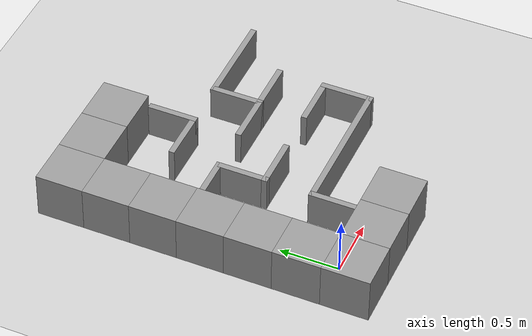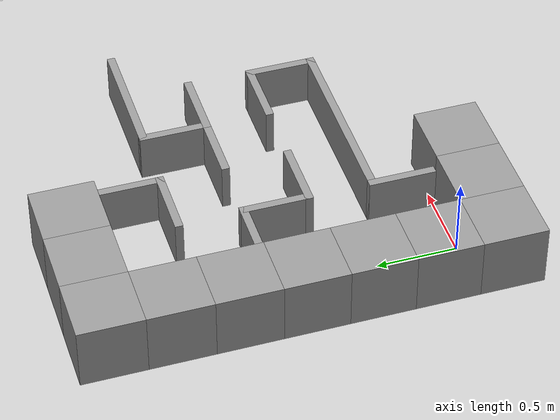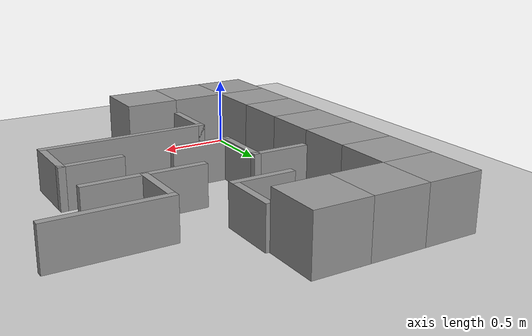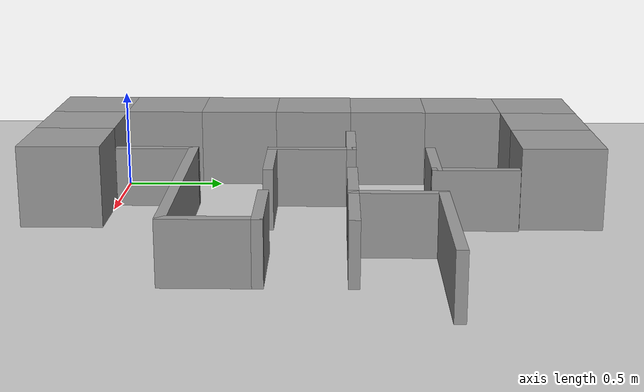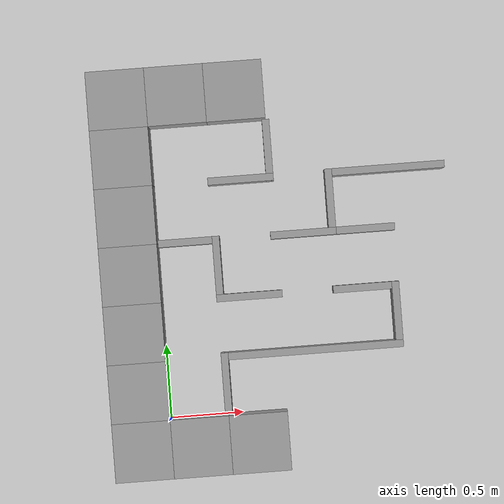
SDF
<sdf version="1.7">
 <world name="default">
  <model name="ground_plane">
   <static>1</static>
   <link name="link">
    <collision name="collision">
     <geometry><plane><normal>0 0 1</normal><size>100 100</size></plane></geometry>
     <surface><friction><ode><mu>100</mu><mu2>50</mu2></ode></friction></surface>
    </collision>
    <visual name="visual">
     <cast_shadows>0</cast_shadows>
     <geometry><plane><normal>0 0 1</normal><size>100 100</size></plane></geometry>
     <material>
      <script><uri>file://media/materials/scripts/gazebo.material</uri><name>Gazebo/Grey</name></script>
     </material>
    </visual>
   </link>
  </model>
  <model name="simplebox_clone_0">
   <link name="link_0_clone">
    <inertial>
     <mass>1</mass>
     <inertia>
      <ixx>0.166667</ixx>
      <ixy>0</ixy>
      <ixz>0</ixz>
      <iyy>0.166667</iyy>
      <iyz>0</iyz>
      <izz>0.166667</izz>
     </inertia>
    </inertial>
    <pose>0 0 0.2 0 -0 0</pose>
    <visual name="visual">
     <geometry><box><size>0.4 0.4 0.4</size></box></geometry>
     <material>
      <lighting>1</lighting>
      <script><uri>file://media/materials/scripts/gazebo.material</uri><name>Gazebo/Grey</name></script>
      <shader type="pixel"><normal_map>__default__</normal_map></shader>
      <ambient>0.3 0.3 0.3 1</ambient>
      <diffuse>0.7 0.7 0.7 1</diffuse>
      <specular>0.01 0.01 0.01 1</specular>
      <emissive>0 0 0 1</emissive>
     </material>
    </visual>
    <collision name="collision">
     <geometry><box><size>0.4 0.4 0.4</size></box></geometry>
     <surface>
      <friction>
       <ode><mu>1</mu><mu2>1</mu2><fdir1>0 0 0</fdir1><slip1>0</slip1><slip2>0</slip2></ode>
       <torsional>
        <coefficient>1</coefficient>
        <patch_radius>0</patch_radius>
        <surface_radius>0</surface_radius>
        <use_patch_radius>1</use_patch_radius>
        <ode><slip>0</slip></ode>
       </torsional>
      </friction>
      <bounce><restitution_coefficient>0</restitution_coefficient><threshold>1e+06</threshold></bounce>
      <contact>
       <collide_without_contact>0</collide_without_contact>
       <collide_without_contact_bitmask>1</collide_without_contact_bitmask>
       <collide_bitmask>1</collide_bitmask>
       <ode>
        <soft_cfm>0</soft_cfm>
        <soft_erp>0.2</soft_erp>
        <kp>1e+13</kp>
        <kd>1</kd>
        <max_vel>0.01</max_vel>
        <min_depth>0</min_depth>
       </ode>
       <bullet>
        <split_impulse>1</split_impulse>
        <split_impulse_penetration_threshold>-0.01</split_impulse_penetration_threshold>
        <soft_cfm>0</soft_cfm>
        <soft_erp>0.2</soft_erp>
        <kp>1e+13</kp>
        <kd>1</kd>
       </bullet>
      </contact>
     </surface>
    </collision>
   </link>
   <static>0</static>
   <pose>-0.200009 -0.20001 -0 0 -0 0</pose>
  </model>
  <model name="simplebox_clone_1">
   <link name="link_0_clone">
    <inertial>
     <mass>1</mass>
     <inertia>
      <ixx>0.166667</ixx>
      <ixy>0</ixy>
      <ixz>0</ixz>
      <iyy>0.166667</iyy>
      <iyz>0</iyz>
      <izz>0.166667</izz>
     </inertia>
    </inertial>
    <pose>0 0 0.2 0 -0 0</pose>
    <visual name="visual">
     <geometry><box><size>0.4 0.4 0.4</size></box></geometry>
     <material>
      <lighting>1</lighting>
      <script><uri>file://media/materials/scripts/gazebo.material</uri><name>Gazebo/Grey</name></script>
      <shader type="pixel"><normal_map>__default__</normal_map></shader>
      <ambient>0.3 0.3 0.3 1</ambient>
      <diffuse>0.7 0.7 0.7 1</diffuse>
      <specular>0.01 0.01 0.01 1</specular>
      <emissive>0 0 0 1</emissive>
     </material>
    </visual>
    <collision name="collision">
     <geometry><box><size>0.4 0.4 0.4</size></box></geometry>
     <surface>
      <friction>
       <ode><mu>1</mu><mu2>1</mu2><fdir1>0 0 0</fdir1><slip1>0</slip1><slip2>0</slip2></ode>
       <torsional>
        <coefficient>1</coefficient>
        <patch_radius>0</patch_radius>
        <surface_radius>0</surface_radius>
        <use_patch_radius>1</use_patch_radius>
        <ode><slip>0</slip></ode>
       </torsional>
      </friction>
      <bounce><restitution_coefficient>0</restitution_coefficient><threshold>1e+06</threshold></bounce>
      <contact>
       <collide_without_contact>0</collide_without_contact>
       <collide_without_contact_bitmask>1</collide_without_contact_bitmask>
       <collide_bitmask>1</collide_bitmask>
       <ode>
        <soft_cfm>0</soft_cfm>
        <soft_erp>0.2</soft_erp>
        <kp>1e+13</kp>
        <kd>1</kd>
        <max_vel>0.01</max_vel>
        <min_depth>0</min_depth>
       </ode>
       <bullet>
        <split_impulse>1</split_impulse>
        <split_impulse_penetration_threshold>-0.01</split_impulse_penetration_threshold>
        <soft_cfm>0</soft_cfm>
        <soft_erp>0.2</soft_erp>
        <kp>1e+13</kp>
        <kd>1</kd>
       </bullet>
      </contact>
     </surface>
    </collision>
   </link>
   <static>0</static>
   <pose>-0.200012 0.199992 -0 0 0 -2e-06</pose>
  </model>
  <model name="simplebox_clone_7">
   <link name="link_0_clone">
    <inertial>
     <mass>1</mass>
     <inertia>
      <ixx>0.166667</ixx>
      <ixy>0</ixy>
      <ixz>0</ixz>
      <iyy>0.166667</iyy>
      <iyz>0</iyz>
      <izz>0.166667</izz>
     </inertia>
    </inertial>
    <pose>0 0 0.2 0 -0 0</pose>
    <visual name="visual">
     <geometry><box><size>0.4 0.4 0.4</size></box></geometry>
     <material>
      <lighting>1</lighting>
      <script><uri>file://media/materials/scripts/gazebo.material</uri><name>Gazebo/Grey</name></script>
      <shader type="pixel"><normal_map>__default__</normal_map></shader>
      <ambient>0.3 0.3 0.3 1</ambient>
      <diffuse>0.7 0.7 0.7 1</diffuse>
      <specular>0.01 0.01 0.01 1</specular>
      <emissive>0 0 0 1</emissive>
     </material>
    </visual>
    <collision name="collision">
     <geometry><box><size>0.4 0.4 0.4</size></box></geometry>
     <surface>
      <friction>
       <ode><mu>1</mu><mu2>1</mu2><fdir1>0 0 0</fdir1><slip1>0</slip1><slip2>0</slip2></ode>
       <torsional>
        <coefficient>1</coefficient>
        <patch_radius>0</patch_radius>
        <surface_radius>0</surface_radius>
        <use_patch_radius>1</use_patch_radius>
        <ode><slip>0</slip></ode>
       </torsional>
      </friction>
      <bounce><restitution_coefficient>0</restitution_coefficient><threshold>1e+06</threshold></bounce>
      <contact>
       <collide_without_contact>0</collide_without_contact>
       <collide_without_contact_bitmask>1</collide_without_contact_bitmask>
       <collide_bitmask>1</collide_bitmask>
       <ode>
        <soft_cfm>0</soft_cfm>
        <soft_erp>0.2</soft_erp>
        <kp>1e+13</kp>
        <kd>1</kd>
        <max_vel>0.01</max_vel>
        <min_depth>0</min_depth>
       </ode>
       <bullet>
        <split_impulse>1</split_impulse>
        <split_impulse_penetration_threshold>-0.01</split_impulse_penetration_threshold>
        <soft_cfm>0</soft_cfm>
        <soft_erp>0.2</soft_erp>
        <kp>1e+13</kp>
        <kd>1</kd>
       </bullet>
      </contact>
     </surface>
    </collision>
   </link>
   <static>0</static>
   <pose>-0.200015 0.599992 -0 0 -0 1e-06</pose>
  </model>
  <model name="simplebox_clone_8">
   <link name="link_0_clone">
    <inertial>
     <mass>1</mass>
     <inertia>
      <ixx>0.166667</ixx>
      <ixy>0</ixy>
      <ixz>0</ixz>
      <iyy>0.166667</iyy>
      <iyz>0</iyz>
      <izz>0.166667</izz>
     </inertia>
    </inertial>
    <pose>0 0 0.2 0 -0 0</pose>
    <visual name="visual">
     <geometry><box><size>0.4 0.4 0.4</size></box></geometry>
     <material>
      <lighting>1</lighting>
      <script><uri>file://media/materials/scripts/gazebo.material</uri><name>Gazebo/Grey</name></script>
      <shader type="pixel"><normal_map>__default__</normal_map></shader>
      <ambient>0.3 0.3 0.3 1</ambient>
      <diffuse>0.7 0.7 0.7 1</diffuse>
      <specular>0.01 0.01 0.01 1</specular>
      <emissive>0 0 0 1</emissive>
     </material>
    </visual>
    <collision name="collision">
     <geometry><box><size>0.4 0.4 0.4</size></box></geometry>
     <surface>
      <friction>
       <ode><mu>1</mu><mu2>1</mu2><fdir1>0 0 0</fdir1><slip1>0</slip1><slip2>0</slip2></ode>
       <torsional>
        <coefficient>1</coefficient>
        <patch_radius>0</patch_radius>
        <surface_radius>0</surface_radius>
        <use_patch_radius>1</use_patch_radius>
        <ode><slip>0</slip></ode>
       </torsional>
      </friction>
      <bounce><restitution_coefficient>0</restitution_coefficient><threshold>1e+06</threshold></bounce>
      <contact>
       <collide_without_contact>0</collide_without_contact>
       <collide_without_contact_bitmask>1</collide_without_contact_bitmask>
       <collide_bitmask>1</collide_bitmask>
       <ode>
        <soft_cfm>0</soft_cfm>
        <soft_erp>0.2</soft_erp>
        <kp>1e+13</kp>
        <kd>1</kd>
        <max_vel>0.01</max_vel>
        <min_depth>0</min_depth>
       </ode>
       <bullet>
        <split_impulse>1</split_impulse>
        <split_impulse_penetration_threshold>-0.01</split_impulse_penetration_threshold>
        <soft_cfm>0</soft_cfm>
        <soft_erp>0.2</soft_erp>
        <kp>1e+13</kp>
        <kd>1</kd>
       </bullet>
      </contact>
     </surface>
    </collision>
   </link>
   <static>0</static>
   <pose>-0.200014 0.999993 -0 0 -0 2e-06</pose>
  </model>
  <model name="simplebox_clone_9">
   <link name="link_0_clone">
    <inertial>
     <mass>1</mass>
     <inertia>
      <ixx>0.166667</ixx>
      <ixy>0</ixy>
      <ixz>0</ixz>
      <iyy>0.166667</iyy>
      <iyz>0</iyz>
      <izz>0.166667</izz>
     </inertia>
    </inertial>
    <pose>0 0 0.2 0 -0 0</pose>
    <visual name="visual">
     <geometry><box><size>0.4 0.4 0.4</size></box></geometry>
     <material>
      <lighting>1</lighting>
      <script><uri>file://media/materials/scripts/gazebo.material</uri><name>Gazebo/Grey</name></script>
      <shader type="pixel"><normal_map>__default__</normal_map></shader>
      <ambient>0.3 0.3 0.3 1</ambient>
      <diffuse>0.7 0.7 0.7 1</diffuse>
      <specular>0.01 0.01 0.01 1</specular>
      <emissive>0 0 0 1</emissive>
     </material>
    </visual>
    <collision name="collision">
     <geometry><box><size>0.4 0.4 0.4</size></box></geometry>
     <surface>
      <friction>
       <ode><mu>1</mu><mu2>1</mu2><fdir1>0 0 0</fdir1><slip1>0</slip1><slip2>0</slip2></ode>
       <torsional>
        <coefficient>1</coefficient>
        <patch_radius>0</patch_radius>
        <surface_radius>0</surface_radius>
        <use_patch_radius>1</use_patch_radius>
        <ode><slip>0</slip></ode>
       </torsional>
      </friction>
      <bounce><restitution_coefficient>0</restitution_coefficient><threshold>1e+06</threshold></bounce>
      <contact>
       <collide_without_contact>0</collide_without_contact>
       <collide_without_contact_bitmask>1</collide_without_contact_bitmask>
       <collide_bitmask>1</collide_bitmask>
       <ode>
        <soft_cfm>0</soft_cfm>
        <soft_erp>0.2</soft_erp>
        <kp>1e+13</kp>
        <kd>1</kd>
        <max_vel>0.01</max_vel>
        <min_depth>0</min_depth>
       </ode>
       <bullet>
        <split_impulse>1</split_impulse>
        <split_impulse_penetration_threshold>-0.01</split_impulse_penetration_threshold>
        <soft_cfm>0</soft_cfm>
        <soft_erp>0.2</soft_erp>
        <kp>1e+13</kp>
        <kd>1</kd>
       </bullet>
      </contact>
     </surface>
    </collision>
   </link>
   <static>0</static>
   <pose>-0.200008 1.4 -0 0 -0 2e-06</pose>
  </model>
  <model name="simplebox_clone_10">
   <link name="link_0_clone">
    <inertial>
     <mass>1</mass>
     <inertia>
      <ixx>0.166667</ixx>
      <ixy>0</ixy>
      <ixz>0</ixz>
      <iyy>0.166667</iyy>
      <iyz>0</iyz>
      <izz>0.166667</izz>
     </inertia>
    </inertial>
    <pose>0 0 0.2 0 -0 0</pose>
    <visual name="visual">
     <geometry><box><size>0.4 0.4 0.4</size></box></geometry>
     <material>
      <lighting>1</lighting>
      <script><uri>file://media/materials/scripts/gazebo.material</uri><name>Gazebo/Grey</name></script>
      <shader type="pixel"><normal_map>__default__</normal_map></shader>
      <ambient>0.3 0.3 0.3 1</ambient>
      <diffuse>0.7 0.7 0.7 1</diffuse>
      <specular>0.01 0.01 0.01 1</specular>
      <emissive>0 0 0 1</emissive>
     </material>
    </visual>
    <collision name="collision">
     <geometry><box><size>0.4 0.4 0.4</size></box></geometry>
     <surface>
      <friction>
       <ode><mu>1</mu><mu2>1</mu2><fdir1>0 0 0</fdir1><slip1>0</slip1><slip2>0</slip2></ode>
       <torsional>
        <coefficient>1</coefficient>
        <patch_radius>0</patch_radius>
        <surface_radius>0</surface_radius>
        <use_patch_radius>1</use_patch_radius>
        <ode><slip>0</slip></ode>
       </torsional>
      </friction>
      <bounce><restitution_coefficient>0</restitution_coefficient><threshold>1e+06</threshold></bounce>
      <contact>
       <collide_without_contact>0</collide_without_contact>
       <collide_without_contact_bitmask>1</collide_without_contact_bitmask>
       <collide_bitmask>1</collide_bitmask>
       <ode>
        <soft_cfm>0</soft_cfm>
        <soft_erp>0.2</soft_erp>
        <kp>1e+13</kp>
        <kd>1</kd>
        <max_vel>0.01</max_vel>
        <min_depth>0</min_depth>
       </ode>
       <bullet>
        <split_impulse>1</split_impulse>
        <split_impulse_penetration_threshold>-0.01</split_impulse_penetration_threshold>
        <soft_cfm>0</soft_cfm>
        <soft_erp>0.2</soft_erp>
        <kp>1e+13</kp>
        <kd>1</kd>
       </bullet>
      </contact>
     </surface>
    </collision>
   </link>
   <static>0</static>
   <pose>-0.20002 1.8 -0 0 -0 2e-06</pose>
  </model>
  <model name="simplebox_clone_2_clone_2">
   <link name="link_0_clone">
    <inertial>
     <mass>1</mass>
     <inertia>
      <ixx>0.166667</ixx>
      <ixy>0</ixy>
      <ixz>0</ixz>
      <iyy>0.166667</iyy>
      <iyz>0</iyz>
      <izz>0.166667</izz>
     </inertia>
    </inertial>
    <pose>0 0 0.2 0 -0 0</pose>
    <visual name="visual">
     <geometry><box><size>0.4 0.4 0.4</size></box></geometry>
     <material>
      <lighting>1</lighting>
      <script><uri>file://media/materials/scripts/gazebo.material</uri><name>Gazebo/Grey</name></script>
      <shader type="pixel"><normal_map>__default__</normal_map></shader>
      <ambient>0.3 0.3 0.3 1</ambient>
      <diffuse>0.7 0.7 0.7 1</diffuse>
      <specular>0.01 0.01 0.01 1</specular>
      <emissive>0 0 0 1</emissive>
     </material>
    </visual>
    <collision name="collision">
     <geometry><box><size>0.4 0.4 0.4</size></box></geometry>
     <surface>
      <friction>
       <ode><mu>1</mu><mu2>1</mu2><fdir1>0 0 0</fdir1><slip1>0</slip1><slip2>0</slip2></ode>
       <torsional>
        <coefficient>1</coefficient>
        <patch_radius>0</patch_radius>
        <surface_radius>0</surface_radius>
        <use_patch_radius>1</use_patch_radius>
        <ode><slip>0</slip></ode>
       </torsional>
      </friction>
      <bounce><restitution_coefficient>0</restitution_coefficient><threshold>1e+06</threshold></bounce>
      <contact>
       <collide_without_contact>0</collide_without_contact>
       <collide_without_contact_bitmask>1</collide_without_contact_bitmask>
       <collide_bitmask>1</collide_bitmask>
       <ode>
        <soft_cfm>0</soft_cfm>
        <soft_erp>0.2</soft_erp>
        <kp>1e+13</kp>
        <kd>1</kd>
        <max_vel>0.01</max_vel>
        <min_depth>0</min_depth>
       </ode>
       <bullet>
        <split_impulse>1</split_impulse>
        <split_impulse_penetration_threshold>-0.01</split_impulse_penetration_threshold>
        <soft_cfm>0</soft_cfm>
        <soft_erp>0.2</soft_erp>
        <kp>1e+13</kp>
        <kd>1</kd>
       </bullet>
      </contact>
     </surface>
    </collision>
   </link>
   <static>0</static>
   <pose>0.199995 -0.199998 -0 0 -0 -3e-06</pose>
  </model>
  <model name="simplebox_clone_11_clone">
   <link name="link_0_clone">
    <inertial>
     <mass>1</mass>
     <inertia>
      <ixx>0.166667</ixx>
      <ixy>0</ixy>
      <ixz>0</ixz>
      <iyy>0.166667</iyy>
      <iyz>0</iyz>
      <izz>0.166667</izz>
     </inertia>
    </inertial>
    <pose>0 0 0.2 0 -0 0</pose>
    <visual name="visual">
     <geometry><box><size>0.4 0.4 0.4</size></box></geometry>
     <material>
      <lighting>1</lighting>
      <script><uri>file://media/materials/scripts/gazebo.material</uri><name>Gazebo/Grey</name></script>
      <shader type="pixel"><normal_map>__default__</normal_map></shader>
      <ambient>0.3 0.3 0.3 1</ambient>
      <diffuse>0.7 0.7 0.7 1</diffuse>
      <specular>0.01 0.01 0.01 1</specular>
      <emissive>0 0 0 1</emissive>
     </material>
    </visual>
    <collision name="collision">
     <geometry><box><size>0.4 0.4 0.4</size></box></geometry>
     <surface>
      <friction>
       <ode><mu>1</mu><mu2>1</mu2><fdir1>0 0 0</fdir1><slip1>0</slip1><slip2>0</slip2></ode>
       <torsional>
        <coefficient>1</coefficient>
        <patch_radius>0</patch_radius>
        <surface_radius>0</surface_radius>
        <use_patch_radius>1</use_patch_radius>
        <ode><slip>0</slip></ode>
       </torsional>
      </friction>
      <bounce><restitution_coefficient>0</restitution_coefficient><threshold>1e+06</threshold></bounce>
      <contact>
       <collide_without_contact>0</collide_without_contact>
       <collide_without_contact_bitmask>1</collide_without_contact_bitmask>
       <collide_bitmask>1</collide_bitmask>
       <ode>
        <soft_cfm>0</soft_cfm>
        <soft_erp>0.2</soft_erp>
        <kp>1e+13</kp>
        <kd>1</kd>
        <max_vel>0.01</max_vel>
        <min_depth>0</min_depth>
       </ode>
       <bullet>
        <split_impulse>1</split_impulse>
        <split_impulse_penetration_threshold>-0.01</split_impulse_penetration_threshold>
        <soft_cfm>0</soft_cfm>
        <soft_erp>0.2</soft_erp>
        <kp>1e+13</kp>
        <kd>1</kd>
       </bullet>
      </contact>
     </surface>
    </collision>
   </link>
   <static>0</static>
   <pose>-0.200093 2.2 -0 0 -0 1.5e-05</pose>
  </model>
  <model name="simplebox_clone_11_clone_0">
   <link name="link_0_clone">
    <inertial>
     <mass>1</mass>
     <inertia>
      <ixx>0.166667</ixx>
      <ixy>0</ixy>
      <ixz>0</ixz>
      <iyy>0.166667</iyy>
      <iyz>0</iyz>
      <izz>0.166667</izz>
     </inertia>
    </inertial>
    <pose>0 0 0.2 0 -0 0</pose>
    <visual name="visual">
     <geometry><box><size>0.4 0.4 0.4</size></box></geometry>
     <material>
      <lighting>1</lighting>
      <script><uri>file://media/materials/scripts/gazebo.material</uri><name>Gazebo/Grey</name></script>
      <shader type="pixel"><normal_map>__default__</normal_map></shader>
      <ambient>0.3 0.3 0.3 1</ambient>
      <diffuse>0.7 0.7 0.7 1</diffuse>
      <specular>0.01 0.01 0.01 1</specular>
      <emissive>0 0 0 1</emissive>
     </material>
    </visual>
    <collision name="collision">
     <geometry><box><size>0.4 0.4 0.4</size></box></geometry>
     <surface>
      <friction>
       <ode><mu>1</mu><mu2>1</mu2><fdir1>0 0 0</fdir1><slip1>0</slip1><slip2>0</slip2></ode>
       <torsional>
        <coefficient>1</coefficient>
        <patch_radius>0</patch_radius>
        <surface_radius>0</surface_radius>
        <use_patch_radius>1</use_patch_radius>
        <ode><slip>0</slip></ode>
       </torsional>
      </friction>
      <bounce><restitution_coefficient>0</restitution_coefficient><threshold>1e+06</threshold></bounce>
      <contact>
       <collide_without_contact>0</collide_without_contact>
       <collide_without_contact_bitmask>1</collide_without_contact_bitmask>
       <collide_bitmask>1</collide_bitmask>
       <ode>
        <soft_cfm>0</soft_cfm>
        <soft_erp>0.2</soft_erp>
        <kp>1e+13</kp>
        <kd>1</kd>
        <max_vel>0.01</max_vel>
        <min_depth>0</min_depth>
       </ode>
       <bullet>
        <split_impulse>1</split_impulse>
        <split_impulse_penetration_threshold>-0.01</split_impulse_penetration_threshold>
        <soft_cfm>0</soft_cfm>
        <soft_erp>0.2</soft_erp>
        <kp>1e+13</kp>
        <kd>1</kd>
       </bullet>
      </contact>
     </surface>
    </collision>
   </link>
   <static>0</static>
   <pose>0.199914 2.20001 -0 0 -0 3.2e-05</pose>
  </model>
  <model name="simplebox_clone_11_clone_1">
   <link name="link_0_clone">
    <inertial>
     <mass>1</mass>
     <inertia>
      <ixx>0.166667</ixx>
      <ixy>0</ixy>
      <ixz>0</ixz>
      <iyy>0.166667</iyy>
      <iyz>0</iyz>
      <izz>0.166667</izz>
     </inertia>
    </inertial>
    <pose>0 0 0.2 0 -0 0</pose>
    <visual name="visual">
     <geometry><box><size>0.4 0.4 0.4</size></box></geometry>
     <material>
      <lighting>1</lighting>
      <script><uri>file://media/materials/scripts/gazebo.material</uri><name>Gazebo/Grey</name></script>
      <shader type="pixel"><normal_map>__default__</normal_map></shader>
      <ambient>0.3 0.3 0.3 1</ambient>
      <diffuse>0.7 0.7 0.7 1</diffuse>
      <specular>0.01 0.01 0.01 1</specular>
      <emissive>0 0 0 1</emissive>
     </material>
    </visual>
    <collision name="collision">
     <geometry><box><size>0.4 0.4 0.4</size></box></geometry>
     <surface>
      <friction>
       <ode><mu>1</mu><mu2>1</mu2><fdir1>0 0 0</fdir1><slip1>0</slip1><slip2>0</slip2></ode>
       <torsional>
        <coefficient>1</coefficient>
        <patch_radius>0</patch_radius>
        <surface_radius>0</surface_radius>
        <use_patch_radius>1</use_patch_radius>
        <ode><slip>0</slip></ode>
       </torsional>
      </friction>
      <bounce><restitution_coefficient>0</restitution_coefficient><threshold>1e+06</threshold></bounce>
      <contact>
       <collide_without_contact>0</collide_without_contact>
       <collide_without_contact_bitmask>1</collide_without_contact_bitmask>
       <collide_bitmask>1</collide_bitmask>
       <ode>
        <soft_cfm>0</soft_cfm>
        <soft_erp>0.2</soft_erp>
        <kp>1e+13</kp>
        <kd>1</kd>
        <max_vel>0.01</max_vel>
        <min_depth>0</min_depth>
       </ode>
       <bullet>
        <split_impulse>1</split_impulse>
        <split_impulse_penetration_threshold>-0.01</split_impulse_penetration_threshold>
        <soft_cfm>0</soft_cfm>
        <soft_erp>0.2</soft_erp>
        <kp>1e+13</kp>
        <kd>1</kd>
       </bullet>
      </contact>
     </surface>
    </collision>
   </link>
   <static>0</static>
   <pose>0.599921 2.20002 -0 0 -0 4.6e-05</pose>
  </model>
  <model name="maze2">
   <pose>0.9975 0.9975 0 0 -0 0</pose>
   <link name="Wall_32">
    <collision name="Wall_32_Collision">
     <geometry><box><size>0.42 0.05 0.3</size></box></geometry>
     <pose>0 0 0.15 0 -0 0</pose>
    </collision>
    <visual name="Wall_32_Visual">
     <pose>0 0 0.15 0 -0 0</pose>
     <geometry><box><size>0.42 0.05 0.3</size></box></geometry>
     <material>
      <script><uri>file://media/materials/scripts/gazebo.material</uri><name>Gazebo/Grey</name></script>
      <ambient>1 1 1 1</ambient>
     </material>
     <meta><layer>0</layer></meta>
    </visual>
    <pose>-0.5975 -0.7825 0 0 -0 1.5708</pose>
   </link>
   <link name="Wall_34">
    <collision name="Wall_34_Collision">
     <geometry><box><size>1.25 0.05 0.3</size></box></geometry>
     <pose>0 0 0.15 0 -0 0</pose>
    </collision>
    <visual name="Wall_34_Visual">
     <pose>0 0 0.15 0 -0 0</pose>
     <geometry><box><size>1.25 0.05 0.3</size></box></geometry>
     <material>
      <script><uri>file://media/materials/scripts/gazebo.material</uri><name>Gazebo/Grey</name></script>
      <ambient>1 1 1 1</ambient>
     </material>
     <meta><layer>0</layer></meta>
    </visual>
    <pose>0.0025 -0.5975 0 0 -0 0</pose>
   </link>
   <link name="Wall_36">
    <collision name="Wall_36_Collision">
     <geometry><box><size>0.45 0.05 0.3</size></box></geometry>
     <pose>0 0 0.15 0 -0 0</pose>
    </collision>
    <visual name="Wall_36_Visual">
     <pose>0 0 0.15 0 -0 0</pose>
     <geometry><box><size>0.45 0.05 0.3</size></box></geometry>
     <material>
      <script><uri>file://media/materials/scripts/gazebo.material</uri><name>Gazebo/Grey</name></script>
      <ambient>1 1 1 1</ambient>
     </material>
     <meta><layer>0</layer></meta>
    </visual>
    <pose>0.6025 -0.3975 0 0 -0 1.5708</pose>
   </link>
   <link name="Wall_38">
    <collision name="Wall_38_Collision">
     <geometry><box><size>0.45 0.05 0.3</size></box></geometry>
     <pose>0 0 0.15 0 -0 0</pose>
    </collision>
    <visual name="Wall_38_Visual">
     <pose>0 0 0.15 0 -0 0</pose>
     <geometry><box><size>0.45 0.05 0.3</size></box></geometry>
     <material>
      <script><uri>file://media/materials/scripts/gazebo.material</uri><name>Gazebo/Grey</name></script>
      <ambient>1 1 1 1</ambient>
     </material>
     <meta><layer>0</layer></meta>
    </visual>
    <pose>0.4025 -0.1975 0 0 -0 3.14159</pose>
   </link>
   <link name="Wall_42">
    <collision name="Wall_42_Collision">
     <geometry><box><size>0.45 0.05 0.3</size></box></geometry>
     <pose>0 0 0.15 0 -0 0</pose>
    </collision>
    <visual name="Wall_42_Visual">
     <pose>0 0 0.15 0 -0 0</pose>
     <geometry><box><size>0.45 0.05 0.3</size></box></geometry>
     <material>
      <script><uri>file://media/materials/scripts/gazebo.material</uri><name>Gazebo/Grey</name></script>
      <ambient>1 1 1 1</ambient>
     </material>
     <meta><layer>0</layer></meta>
    </visual>
    <pose>-0.3975 -0.1975 0 0 -0 3.14159</pose>
   </link>
   <link name="Wall_44">
    <collision name="Wall_44_Collision">
     <geometry><box><size>0.45 0.05 0.3</size></box></geometry>
     <pose>0 0 0.15 0 -0 0</pose>
    </collision>
    <visual name="Wall_44_Visual">
     <pose>0 0 0.15 0 -0 0</pose>
     <geometry><box><size>0.45 0.05 0.3</size></box></geometry>
     <material>
      <script><uri>file://media/materials/scripts/gazebo.material</uri><name>Gazebo/Grey</name></script>
      <ambient>1 1 1 1</ambient>
     </material>
     <meta><layer>0</layer></meta>
    </visual>
    <pose>-0.5975 0.0025 0 0 -0 1.5708</pose>
   </link>
   <link name="Wall_46">
    <collision name="Wall_46_Collision">
     <geometry><box><size>0.42 0.05 0.3</size></box></geometry>
     <pose>0 0 0.15 0 -0 0</pose>
    </collision>
    <visual name="Wall_46_Visual">
     <pose>0 0 0.15 0 -0 0</pose>
     <geometry><box><size>0.42 0.05 0.3</size></box></geometry>
     <material>
      <script><uri>file://media/materials/scripts/gazebo.material</uri><name>Gazebo/Grey</name></script>
      <ambient>1 1 1 1</ambient>
     </material>
     <meta><layer>0</layer></meta>
    </visual>
    <pose>-0.7825 0.2025 0 0 -0 3.14159</pose>
   </link>
   <link name="Wall_50">
    <collision name="Wall_50_Collision">
     <geometry><box><size>0.45 0.05 0.3</size></box></geometry>
     <pose>0 0 0.15 0 -0 0</pose>
    </collision>
    <visual name="Wall_50_Visual">
     <pose>0 0 0.15 0 -0 0</pose>
     <geometry><box><size>0.45 0.05 0.3</size></box></geometry>
     <material>
      <script><uri>file://media/materials/scripts/gazebo.material</uri><name>Gazebo/Grey</name></script>
      <ambient>1 1 1 1</ambient>
     </material>
     <meta><layer>0</layer></meta>
    </visual>
    <pose>-0.3975 0.6025 0 0 -0 0</pose>
   </link>
   <link name="Wall_52">
    <collision name="Wall_52_Collision">
     <geometry><box><size>0.42 0.05 0.3</size></box></geometry>
     <pose>0 0 0.15 0 -0 0</pose>
    </collision>
    <visual name="Wall_52_Visual">
     <pose>0 0 0.15 0 -0 0</pose>
     <geometry><box><size>0.42 0.05 0.3</size></box></geometry>
     <material>
      <script><uri>file://media/materials/scripts/gazebo.material</uri><name>Gazebo/Grey</name></script>
      <ambient>1 1 1 1</ambient>
     </material>
     <meta><layer>0</layer></meta>
    </visual>
    <pose>-0.1975 0.7875 0 0 -0 1.5708</pose>
   </link>
   <link name="Wall_56">
    <collision name="Wall_56_Collision">
     <geometry><box><size>0.45 0.05 0.3</size></box></geometry>
     <pose>0 0 0.15 0 -0 0</pose>
    </collision>
    <visual name="Wall_56_Visual">
     <pose>0 0 0.15 0 -0 0</pose>
     <geometry><box><size>0.45 0.05 0.3</size></box></geometry>
     <material>
      <script><uri>file://media/materials/scripts/gazebo.material</uri><name>Gazebo/Grey</name></script>
      <ambient>1 1 1 1</ambient>
     </material>
     <meta><layer>0</layer></meta>
    </visual>
    <pose>0.0025 0.2025 0 0 -0 0</pose>
   </link>
   <link name="Wall_58">
    <collision name="Wall_58_Collision">
     <geometry><box><size>0.45 0.05 0.3</size></box></geometry>
     <pose>0 0 0.15 0 -0 0</pose>
    </collision>
    <visual name="Wall_58_Visual">
     <pose>0 0 0.15 0 -0 0</pose>
     <geometry><box><size>0.45 0.05 0.3</size></box></geometry>
     <material>
      <script><uri>file://media/materials/scripts/gazebo.material</uri><name>Gazebo/Grey</name></script>
      <ambient>1 1 1 1</ambient>
     </material>
     <meta><layer>0</layer></meta>
    </visual>
    <pose>0.4025 0.2025 0 0 -0 0</pose>
   </link>
   <link name="Wall_60">
    <collision name="Wall_60_Collision">
     <geometry><box><size>0.45 0.05 0.3</size></box></geometry>
     <pose>0 0 0.15 0 -0 0</pose>
    </collision>
    <visual name="Wall_60_Visual">
     <pose>0 0 0.15 0 -0 0</pose>
     <geometry><box><size>0.45 0.05 0.3</size></box></geometry>
     <material>
      <script><uri>file://media/materials/scripts/gazebo.material</uri><name>Gazebo/Grey</name></script>
      <ambient>1 1 1 1</ambient>
     </material>
     <meta><layer>0</layer></meta>
    </visual>
    <pose>0.2025 0.4025 0 0 -0 1.5708</pose>
   </link>
   <link name="Wall_62">
    <collision name="Wall_62_Collision">
     <geometry><box><size>0.82 0.05 0.3</size></box></geometry>
     <pose>0 0 0.15 0 -0 0</pose>
    </collision>
    <visual name="Wall_62_Visual">
     <pose>0 0 0.15 0 -0 0</pose>
     <geometry><box><size>0.82 0.05 0.3</size></box></geometry>
     <material>
      <script><uri>file://media/materials/scripts/gazebo.material</uri><name>Gazebo/Grey</name></script>
      <ambient>1 1 1 1</ambient>
     </material>
     <meta><layer>0</layer></meta>
    </visual>
    <pose>0.5875 0.6025 0 0 -0 0</pose>
   </link>
   <static>1</static>
  </model>
  <model name="simplebox_clone_2_clone_2_clone">
   <link name="link_0_clone">
    <inertial>
     <mass>1</mass>
     <inertia>
      <ixx>0.166667</ixx>
      <ixy>0</ixy>
      <ixz>0</ixz>
      <iyy>0.166667</iyy>
      <iyz>0</iyz>
      <izz>0.166667</izz>
     </inertia>
    </inertial>
    <pose>0 0 0.2 0 -0 0</pose>
    <visual name="visual">
     <geometry><box><size>0.4 0.4 0.4</size></box></geometry>
     <material>
      <lighting>1</lighting>
      <script><uri>file://media/materials/scripts/gazebo.material</uri><name>Gazebo/Grey</name></script>
      <shader type="pixel"><normal_map>__default__</normal_map></shader>
      <ambient>0.3 0.3 0.3 1</ambient>
      <diffuse>0.7 0.7 0.7 1</diffuse>
      <specular>0.01 0.01 0.01 1</specular>
      <emissive>0 0 0 1</emissive>
     </material>
    </visual>
    <collision name="collision">
     <geometry><box><size>0.4 0.4 0.4</size></box></geometry>
     <surface>
      <friction>
       <ode><mu>1</mu><mu2>1</mu2><fdir1>0 0 0</fdir1><slip1>0</slip1><slip2>0</slip2></ode>
       <torsional>
        <coefficient>1</coefficient>
        <patch_radius>0</patch_radius>
        <surface_radius>0</surface_radius>
        <use_patch_radius>1</use_patch_radius>
        <ode><slip>0</slip></ode>
       </torsional>
      </friction>
      <bounce><restitution_coefficient>0</restitution_coefficient><threshold>1e+06</threshold></bounce>
      <contact>
       <collide_without_contact>0</collide_without_contact>
       <collide_without_contact_bitmask>1</collide_without_contact_bitmask>
       <collide_bitmask>1</collide_bitmask>
       <ode>
        <soft_cfm>0</soft_cfm>
        <soft_erp>0.2</soft_erp>
        <kp>1e+13</kp>
        <kd>1</kd>
        <max_vel>0.01</max_vel>
        <min_depth>0</min_depth>
       </ode>
       <bullet>
        <split_impulse>1</split_impulse>
        <split_impulse_penetration_threshold>-0.01</split_impulse_penetration_threshold>
        <soft_cfm>0</soft_cfm>
        <soft_erp>0.2</soft_erp>
        <kp>1e+13</kp>
        <kd>1</kd>
       </bullet>
      </contact>
     </surface>
    </collision>
   </link>
   <static>0</static>
   <pose>0.599995 -0.199995 -0 -0 -0 -3e-06</pose>
  </model>
 </world>
</sdf>
